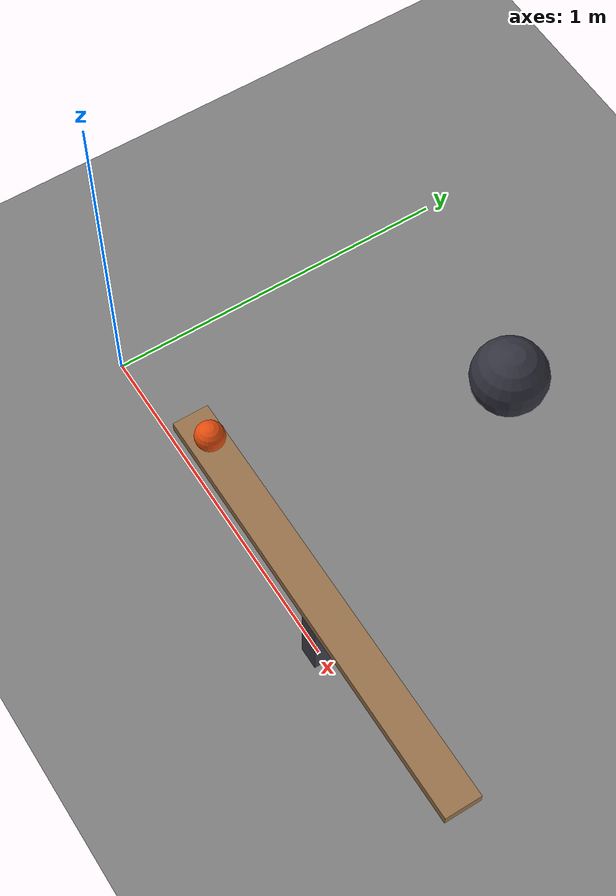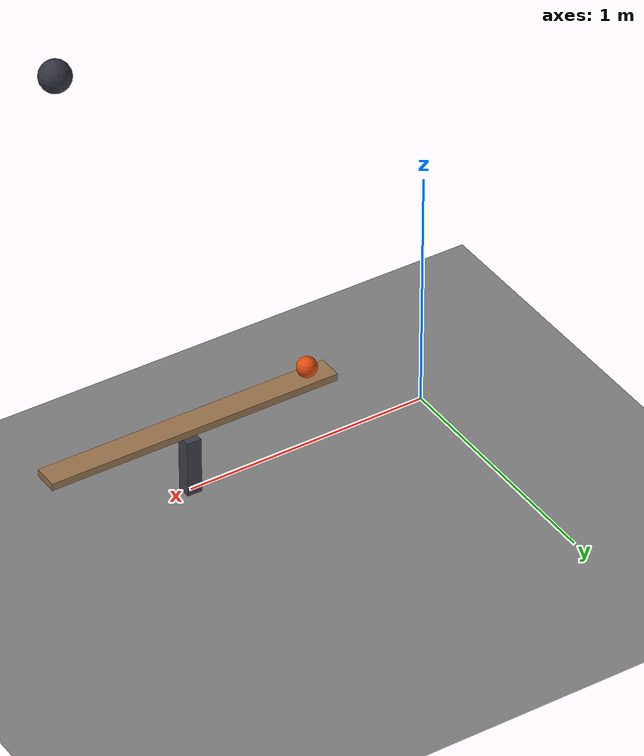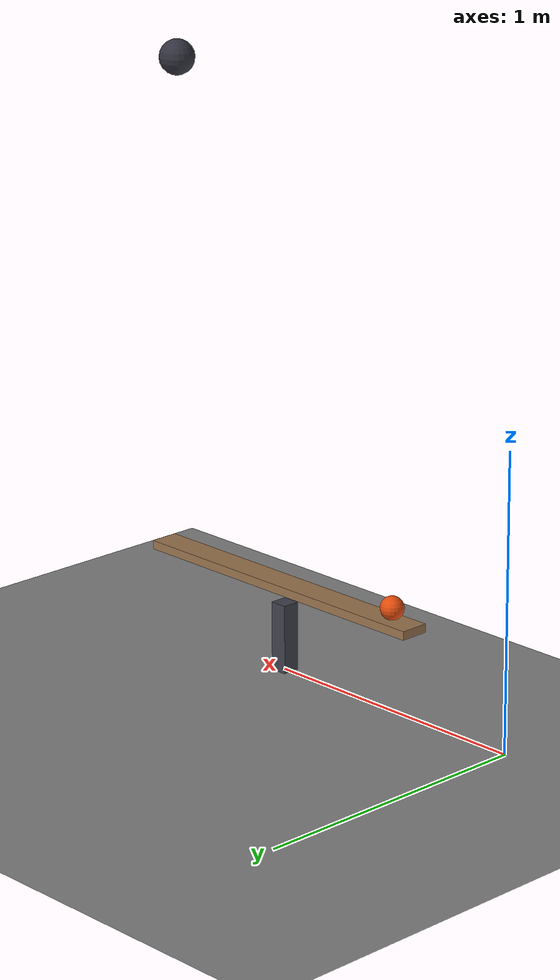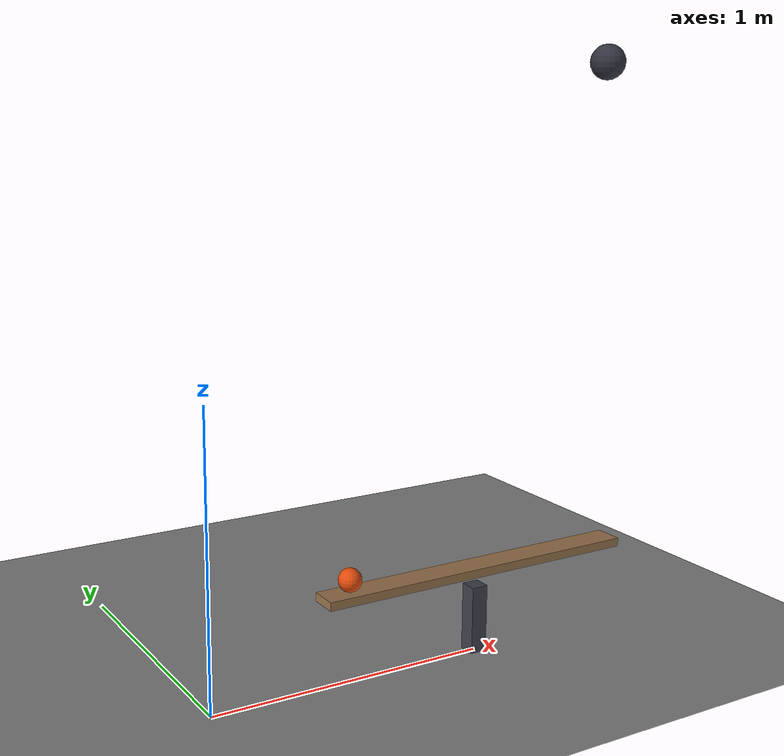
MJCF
<mujoco model="seesaw_throw">
  <compiler angle="radian"/>
  <option timestep="0.002"/>
  <worldbody>
    <geom name="floor" type="plane" size="8 8 0.1" friction="0.8 0.005 0.002"/>
    <body name="pivot">
    </body>
    <body name="stand top">
    </body>
    <body name="stand">
      <geom name="stand" type="box" pos="1 0 0.12" size="0.03 0.03 0.12" rgba="0.25 0.25 0.3 1"/>
    </body>
    <body name="seesaw" pos="1 0 0.3">
      <joint name="seesaw_hinge" type="hinge" pos="0 0 0" axis="0 1 0" limited="true" range="0 0.349066"/>
      <geom name="seesaw" type="box" pos="0 0 0" size="0.6 0.05 0.015" mass="0.3" rgba="0.6 0.45 0.3 1"/>
    </body>
    <body name="ball" pos="0.5 0 0.355">
      <freejoint/>
      <geom name="ball" type="sphere" pos="0 0 0" size="0.04" mass="0.1" friction="0.8 0.01 0.004" rgba="0.9 0.3 0.05 1"/>
    </body>
    <body name="weight" pos="1.5 0 2">
      <freejoint/>
      <geom name="weight" type="sphere" pos="0 0 0" size="0.06" mass="1" solref="0.01 1" rgba="0.2 0.2 0.25 1"/>
    </body>
  </worldbody>
  <keyframe>
    <key name="start" qpos="0 0.5 0 0.355 1 0 0 0 1.5 0 2 1 0 0 0" qvel="0 0 0 0 0 0 0 0 0 0 0 0 0"/>
  </keyframe>
</mujoco>
